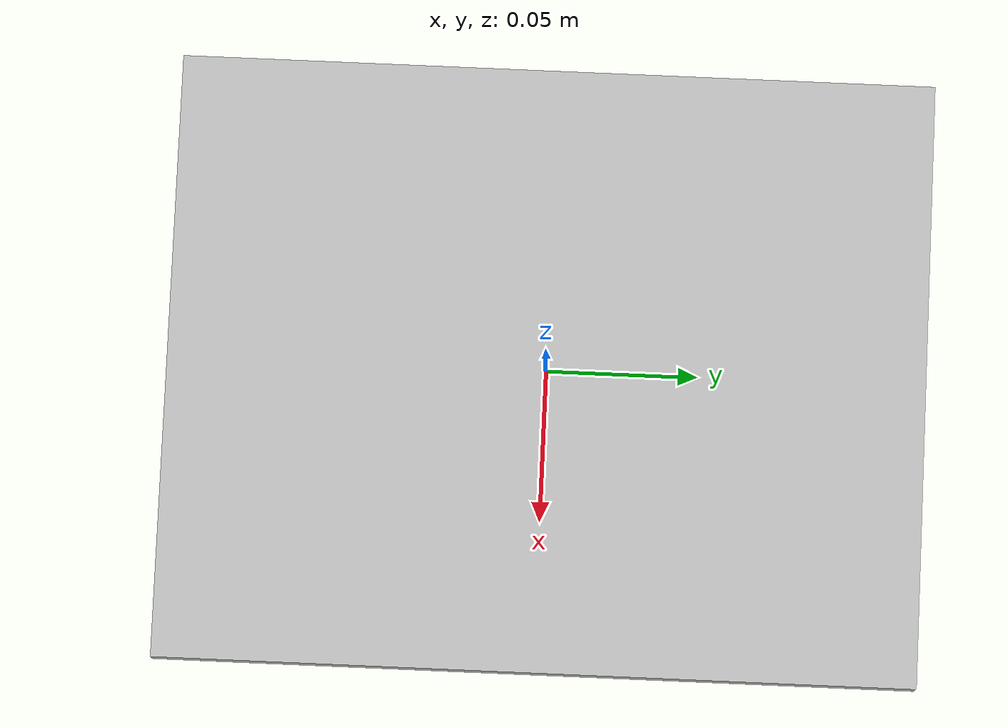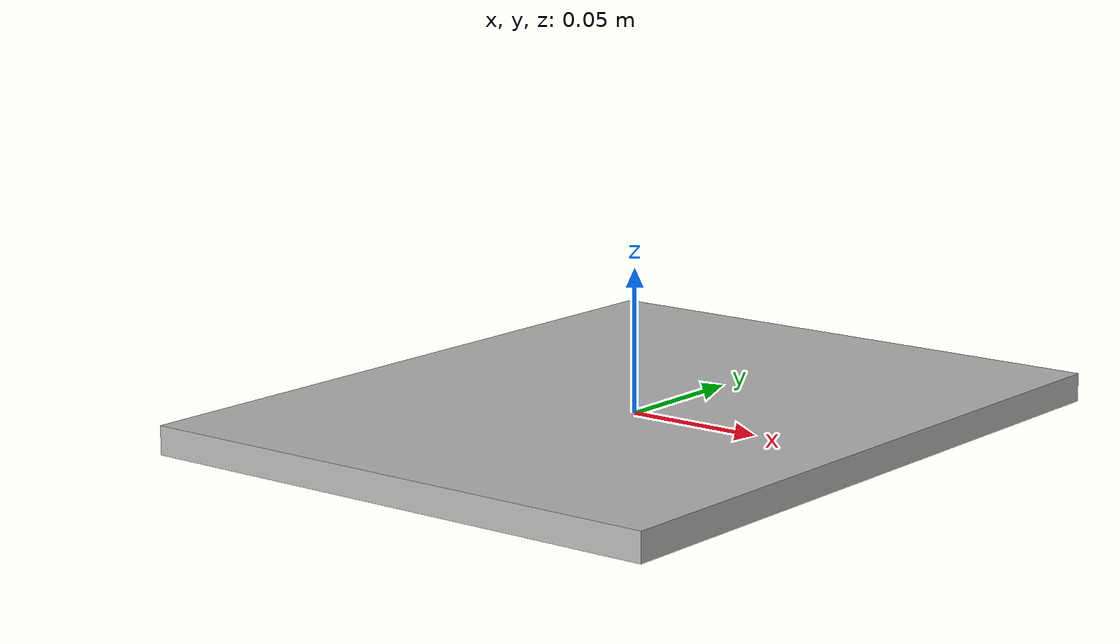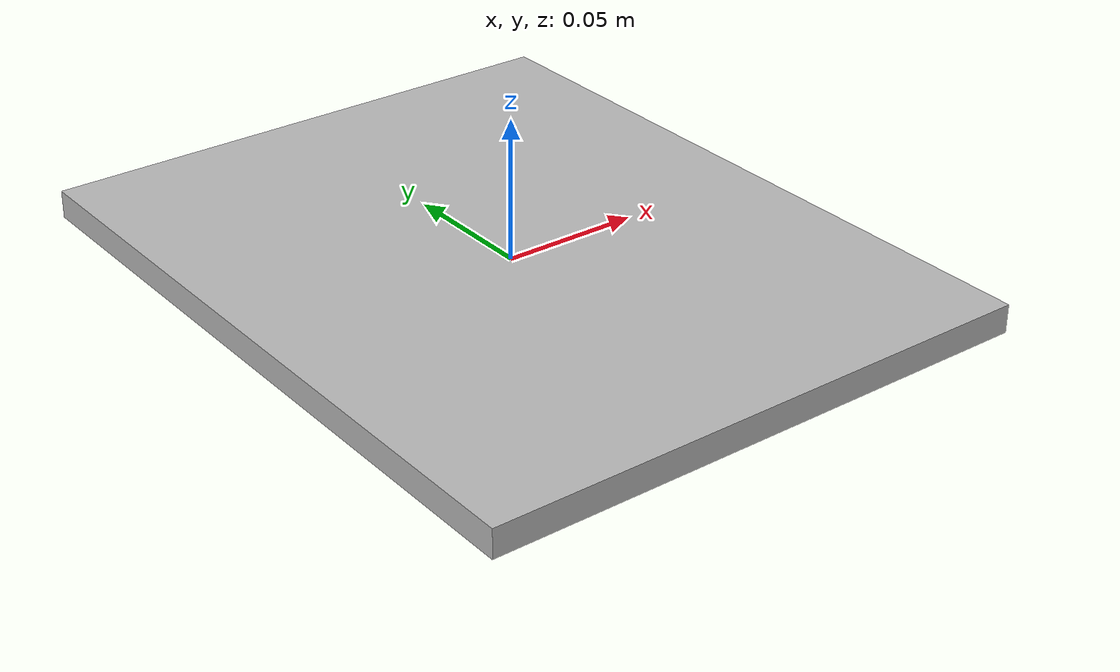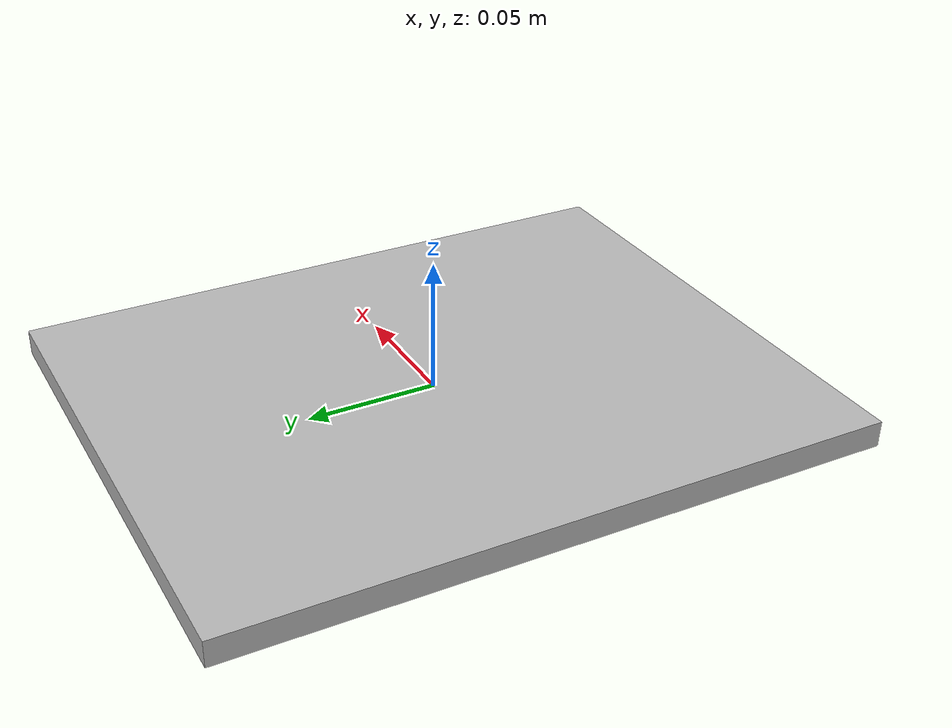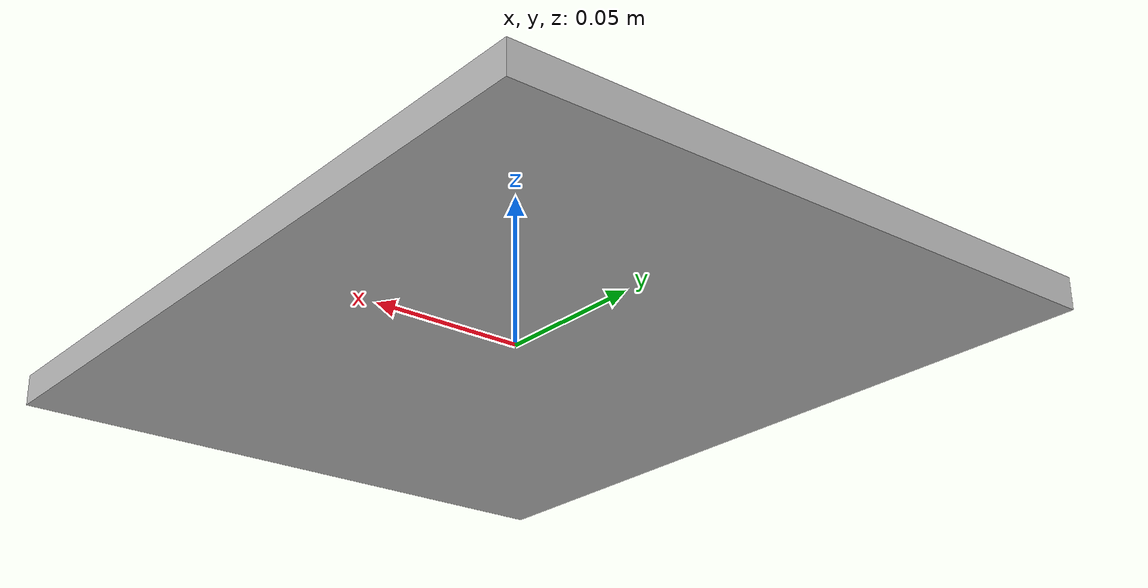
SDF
<?xml version='1.0'?>
<sdf version='1.6'>
	<model name='charuco'>
	  <link name='link'>
		<inertial>
		  <mass>1</mass>
		  <inertia>
			<ixx>0.166667</ixx>
			<ixy>0</ixy>
			<ixz>0</ixz>
			<iyy>0.166667</iyy>
			<iyz>0</iyz>
			<izz>0.166667</izz>
		  </inertia>
		  <pose frame=''>0 0 0 0 0 0</pose>
		</inertial>
		<self_collide>0</self_collide>
		<enable_wind>0</enable_wind>
		<kinematic>0</kinematic>
		<pose frame=''>0 0 0 0 0 0</pose>
		<gravity>1</gravity>
		<visual name='visual'>
		  <geometry>
			<mesh>
				<uri>model://charuco/meshes/charuco_8x10.dae</uri>
			</mesh>
		  </geometry>
            <material>
                <script>
                    <uri>model://charuco/materials/scripts</uri>
                    <uri>model://charuco/materials/textures</uri>
                    <name>charucoMat/Diffuse</name>
                </script>
            </material>
		  <pose frame=''>0 0 0 0 0 0</pose>
		  <transparency>0</transparency>
		  <cast_shadows>1</cast_shadows>
		</visual>
		<collision name='collision'>
		  <pose frame=''>0 0 0 0 0 0</pose>
		  <geometry>
			<box>
			  <size>0.2 0.25 0.01</size>
			</box>
		  </geometry>
		</collision>
	  </link>
	  <static>0</static>
	  <allow_auto_disable>1</allow_auto_disable>
	</model>
</sdf>
